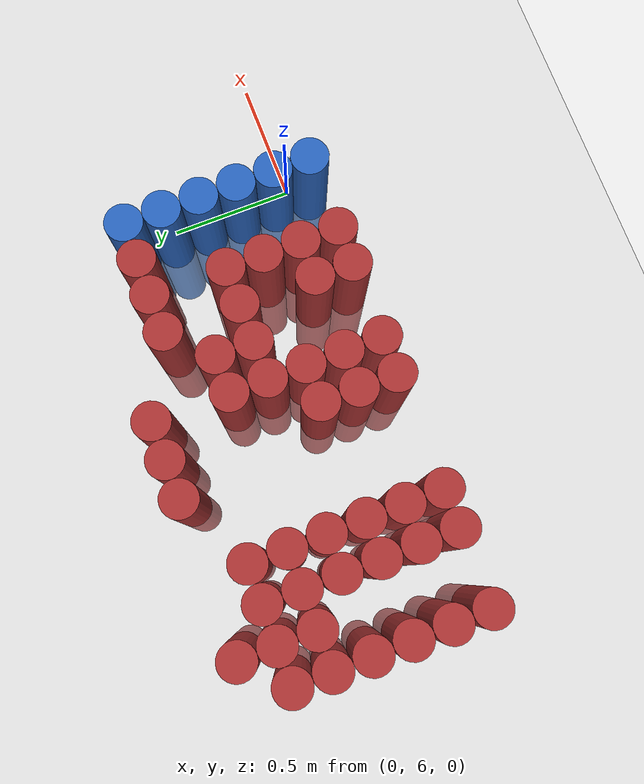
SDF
<sdf version="1.6">
 <world name="default">
  <model name="ground_plane">
   <static>1</static>
   <link name="link">
    <collision name="collision">
     <geometry><plane><normal>0 0 1</normal><size>100 100</size></plane></geometry>
     <surface><friction><ode><mu>100</mu><mu2>50</mu2></ode></friction></surface>
    </collision>
    <visual name="visual">
     <cast_shadows>0</cast_shadows>
     <geometry><plane><normal>0 0 1</normal><size>100 100</size></plane></geometry>
     <material>
      <script><uri>file://media/materials/scripts/gazebo.material</uri><name>Gazebo/Grey</name></script>
     </material>
    </visual>
   </link>
  </model>
  <model name="unit_cylinder_215">
   <static>1</static>
   <pose>-1.875000 5.925000 0.000000 0.000000 0.000000 0.000000</pose>
   <link name="link">
    <inertial>
     <mass>1</mass>
     <inertia><ixx>0.145833</ixx><ixy>0</ixy><ixz>0</ixz><iyy>0.145833</iyy><iyz>0</iyz><izz>0.125</izz></inertia>
    </inertial>
    <collision name="collision">
     <geometry><cylinder><radius>0.075000</radius><length>1</length></cylinder></geometry>
    </collision>
    <visual name="visual">
     <geometry><cylinder><radius>0.075000</radius><length>1</length></cylinder></geometry>
     <material>
      <ambient>0.648000 0.192000 0.192000 1</ambient>
      <diffuse>0.648000 0.192000 0.192000 1</diffuse>
     </material>
     <material>
      <script><name>Gazebo/Grey</name><uri>file://media/materials/scripts/gazebo.material</uri></script>
     </material>
    </visual>
   </link>
  </model>
  <model name="unit_cylinder_216">
   <static>1</static>
   <pose>-1.875000 6.075000 0.000000 0.000000 0.000000 0.000000</pose>
   <link name="link">
    <inertial>
     <mass>1</mass>
     <inertia><ixx>0.145833</ixx><ixy>0</ixy><ixz>0</ixz><iyy>0.145833</iyy><iyz>0</iyz><izz>0.125</izz></inertia>
    </inertial>
    <collision name="collision">
     <geometry><cylinder><radius>0.075000</radius><length>1</length></cylinder></geometry>
    </collision>
    <visual name="visual">
     <geometry><cylinder><radius>0.075000</radius><length>1</length></cylinder></geometry>
     <material>
      <ambient>0.648000 0.192000 0.192000 1</ambient>
      <diffuse>0.648000 0.192000 0.192000 1</diffuse>
     </material>
     <material>
      <script><name>Gazebo/Grey</name><uri>file://media/materials/scripts/gazebo.material</uri></script>
     </material>
    </visual>
   </link>
  </model>
  <model name="unit_cylinder_217">
   <static>1</static>
   <pose>-1.875000 6.225000 0.000000 0.000000 0.000000 0.000000</pose>
   <link name="link">
    <inertial>
     <mass>1</mass>
     <inertia><ixx>0.145833</ixx><ixy>0</ixy><ixz>0</ixz><iyy>0.145833</iyy><iyz>0</iyz><izz>0.125</izz></inertia>
    </inertial>
    <collision name="collision">
     <geometry><cylinder><radius>0.075000</radius><length>1</length></cylinder></geometry>
    </collision>
    <visual name="visual">
     <geometry><cylinder><radius>0.075000</radius><length>1</length></cylinder></geometry>
     <material>
      <ambient>0.648000 0.192000 0.192000 1</ambient>
      <diffuse>0.648000 0.192000 0.192000 1</diffuse>
     </material>
     <material>
      <script><name>Gazebo/Grey</name><uri>file://media/materials/scripts/gazebo.material</uri></script>
     </material>
    </visual>
   </link>
  </model>
  <model name="unit_cylinder_218">
   <static>1</static>
   <pose>-1.875000 6.375000 0.000000 0.000000 0.000000 0.000000</pose>
   <link name="link">
    <inertial>
     <mass>1</mass>
     <inertia><ixx>0.145833</ixx><ixy>0</ixy><ixz>0</ixz><iyy>0.145833</iyy><iyz>0</iyz><izz>0.125</izz></inertia>
    </inertial>
    <collision name="collision">
     <geometry><cylinder><radius>0.075000</radius><length>1</length></cylinder></geometry>
    </collision>
    <visual name="visual">
     <geometry><cylinder><radius>0.075000</radius><length>1</length></cylinder></geometry>
     <material>
      <ambient>0.648000 0.192000 0.192000 1</ambient>
      <diffuse>0.648000 0.192000 0.192000 1</diffuse>
     </material>
     <material>
      <script><name>Gazebo/Grey</name><uri>file://media/materials/scripts/gazebo.material</uri></script>
     </material>
    </visual>
   </link>
  </model>
  <model name="unit_cylinder_219">
   <static>1</static>
   <pose>-1.875000 6.525000 0.000000 0.000000 0.000000 0.000000</pose>
   <link name="link">
    <inertial>
     <mass>1</mass>
     <inertia><ixx>0.145833</ixx><ixy>0</ixy><ixz>0</ixz><iyy>0.145833</iyy><iyz>0</iyz><izz>0.125</izz></inertia>
    </inertial>
    <collision name="collision">
     <geometry><cylinder><radius>0.075000</radius><length>1</length></cylinder></geometry>
    </collision>
    <visual name="visual">
     <geometry><cylinder><radius>0.075000</radius><length>1</length></cylinder></geometry>
     <material>
      <ambient>0.648000 0.192000 0.192000 1</ambient>
      <diffuse>0.648000 0.192000 0.192000 1</diffuse>
     </material>
     <material>
      <script><name>Gazebo/Grey</name><uri>file://media/materials/scripts/gazebo.material</uri></script>
     </material>
    </visual>
   </link>
  </model>
  <model name="unit_cylinder_220">
   <static>1</static>
   <pose>-1.875000 6.675000 0.000000 0.000000 0.000000 0.000000</pose>
   <link name="link">
    <inertial>
     <mass>1</mass>
     <inertia><ixx>0.145833</ixx><ixy>0</ixy><ixz>0</ixz><iyy>0.145833</iyy><iyz>0</iyz><izz>0.125</izz></inertia>
    </inertial>
    <collision name="collision">
     <geometry><cylinder><radius>0.075000</radius><length>1</length></cylinder></geometry>
    </collision>
    <visual name="visual">
     <geometry><cylinder><radius>0.075000</radius><length>1</length></cylinder></geometry>
     <material>
      <ambient>0.648000 0.192000 0.192000 1</ambient>
      <diffuse>0.648000 0.192000 0.192000 1</diffuse>
     </material>
     <material>
      <script><name>Gazebo/Grey</name><uri>file://media/materials/scripts/gazebo.material</uri></script>
     </material>
    </visual>
   </link>
  </model>
  <model name="unit_cylinder_226">
   <static>1</static>
   <pose>-1.725000 6.525000 0.000000 0.000000 0.000000 0.000000</pose>
   <link name="link">
    <inertial>
     <mass>1</mass>
     <inertia><ixx>0.145833</ixx><ixy>0</ixy><ixz>0</ixz><iyy>0.145833</iyy><iyz>0</iyz><izz>0.125</izz></inertia>
    </inertial>
    <collision name="collision">
     <geometry><cylinder><radius>0.075000</radius><length>1</length></cylinder></geometry>
    </collision>
    <visual name="visual">
     <geometry><cylinder><radius>0.075000</radius><length>1</length></cylinder></geometry>
     <material>
      <ambient>0.648000 0.192000 0.192000 1</ambient>
      <diffuse>0.648000 0.192000 0.192000 1</diffuse>
     </material>
     <material>
      <script><name>Gazebo/Grey</name><uri>file://media/materials/scripts/gazebo.material</uri></script>
     </material>
    </visual>
   </link>
  </model>
  <model name="unit_cylinder_227">
   <static>1</static>
   <pose>-1.725000 6.675000 0.000000 0.000000 0.000000 0.000000</pose>
   <link name="link">
    <inertial>
     <mass>1</mass>
     <inertia><ixx>0.145833</ixx><ixy>0</ixy><ixz>0</ixz><iyy>0.145833</iyy><iyz>0</iyz><izz>0.125</izz></inertia>
    </inertial>
    <collision name="collision">
     <geometry><cylinder><radius>0.075000</radius><length>1</length></cylinder></geometry>
    </collision>
    <visual name="visual">
     <geometry><cylinder><radius>0.075000</radius><length>1</length></cylinder></geometry>
     <material>
      <ambient>0.648000 0.192000 0.192000 1</ambient>
      <diffuse>0.648000 0.192000 0.192000 1</diffuse>
     </material>
     <material>
      <script><name>Gazebo/Grey</name><uri>file://media/materials/scripts/gazebo.material</uri></script>
     </material>
    </visual>
   </link>
  </model>
  <model name="unit_cylinder_228">
   <static>1</static>
   <pose>-1.725000 6.825000 0.000000 0.000000 0.000000 0.000000</pose>
   <link name="link">
    <inertial>
     <mass>1</mass>
     <inertia><ixx>0.145833</ixx><ixy>0</ixy><ixz>0</ixz><iyy>0.145833</iyy><iyz>0</iyz><izz>0.125</izz></inertia>
    </inertial>
    <collision name="collision">
     <geometry><cylinder><radius>0.075000</radius><length>1</length></cylinder></geometry>
    </collision>
    <visual name="visual">
     <geometry><cylinder><radius>0.075000</radius><length>1</length></cylinder></geometry>
     <material>
      <ambient>0.648000 0.192000 0.192000 1</ambient>
      <diffuse>0.648000 0.192000 0.192000 1</diffuse>
     </material>
     <material>
      <script><name>Gazebo/Grey</name><uri>file://media/materials/scripts/gazebo.material</uri></script>
     </material>
    </visual>
   </link>
  </model>
  <model name="unit_cylinder_238">
   <static>1</static>
   <pose>-1.575000 5.925000 0.000000 0.000000 0.000000 0.000000</pose>
   <link name="link">
    <inertial>
     <mass>1</mass>
     <inertia><ixx>0.145833</ixx><ixy>0</ixy><ixz>0</ixz><iyy>0.145833</iyy><iyz>0</iyz><izz>0.125</izz></inertia>
    </inertial>
    <collision name="collision">
     <geometry><cylinder><radius>0.075000</radius><length>1</length></cylinder></geometry>
    </collision>
    <visual name="visual">
     <geometry><cylinder><radius>0.075000</radius><length>1</length></cylinder></geometry>
     <material>
      <ambient>0.648000 0.192000 0.192000 1</ambient>
      <diffuse>0.648000 0.192000 0.192000 1</diffuse>
     </material>
     <material>
      <script><name>Gazebo/Grey</name><uri>file://media/materials/scripts/gazebo.material</uri></script>
     </material>
    </visual>
   </link>
  </model>
  <model name="unit_cylinder_239">
   <static>1</static>
   <pose>-1.575000 6.075000 0.000000 0.000000 0.000000 0.000000</pose>
   <link name="link">
    <inertial>
     <mass>1</mass>
     <inertia><ixx>0.145833</ixx><ixy>0</ixy><ixz>0</ixz><iyy>0.145833</iyy><iyz>0</iyz><izz>0.125</izz></inertia>
    </inertial>
    <collision name="collision">
     <geometry><cylinder><radius>0.075000</radius><length>1</length></cylinder></geometry>
    </collision>
    <visual name="visual">
     <geometry><cylinder><radius>0.075000</radius><length>1</length></cylinder></geometry>
     <material>
      <ambient>0.648000 0.192000 0.192000 1</ambient>
      <diffuse>0.648000 0.192000 0.192000 1</diffuse>
     </material>
     <material>
      <script><name>Gazebo/Grey</name><uri>file://media/materials/scripts/gazebo.material</uri></script>
     </material>
    </visual>
   </link>
  </model>
  <model name="unit_cylinder_240">
   <static>1</static>
   <pose>-1.575000 6.225000 0.000000 0.000000 0.000000 0.000000</pose>
   <link name="link">
    <inertial>
     <mass>1</mass>
     <inertia><ixx>0.145833</ixx><ixy>0</ixy><ixz>0</ixz><iyy>0.145833</iyy><iyz>0</iyz><izz>0.125</izz></inertia>
    </inertial>
    <collision name="collision">
     <geometry><cylinder><radius>0.075000</radius><length>1</length></cylinder></geometry>
    </collision>
    <visual name="visual">
     <geometry><cylinder><radius>0.075000</radius><length>1</length></cylinder></geometry>
     <material>
      <ambient>0.648000 0.192000 0.192000 1</ambient>
      <diffuse>0.648000 0.192000 0.192000 1</diffuse>
     </material>
     <material>
      <script><name>Gazebo/Grey</name><uri>file://media/materials/scripts/gazebo.material</uri></script>
     </material>
    </visual>
   </link>
  </model>
  <model name="unit_cylinder_241">
   <static>1</static>
   <pose>-1.575000 6.375000 0.000000 0.000000 0.000000 0.000000</pose>
   <link name="link">
    <inertial>
     <mass>1</mass>
     <inertia><ixx>0.145833</ixx><ixy>0</ixy><ixz>0</ixz><iyy>0.145833</iyy><iyz>0</iyz><izz>0.125</izz></inertia>
    </inertial>
    <collision name="collision">
     <geometry><cylinder><radius>0.075000</radius><length>1</length></cylinder></geometry>
    </collision>
    <visual name="visual">
     <geometry><cylinder><radius>0.075000</radius><length>1</length></cylinder></geometry>
     <material>
      <ambient>0.648000 0.192000 0.192000 1</ambient>
      <diffuse>0.648000 0.192000 0.192000 1</diffuse>
     </material>
     <material>
      <script><name>Gazebo/Grey</name><uri>file://media/materials/scripts/gazebo.material</uri></script>
     </material>
    </visual>
   </link>
  </model>
  <model name="unit_cylinder_242">
   <static>1</static>
   <pose>-1.575000 6.525000 0.000000 0.000000 0.000000 0.000000</pose>
   <link name="link">
    <inertial>
     <mass>1</mass>
     <inertia><ixx>0.145833</ixx><ixy>0</ixy><ixz>0</ixz><iyy>0.145833</iyy><iyz>0</iyz><izz>0.125</izz></inertia>
    </inertial>
    <collision name="collision">
     <geometry><cylinder><radius>0.075000</radius><length>1</length></cylinder></geometry>
    </collision>
    <visual name="visual">
     <geometry><cylinder><radius>0.075000</radius><length>1</length></cylinder></geometry>
     <material>
      <ambient>0.648000 0.192000 0.192000 1</ambient>
      <diffuse>0.648000 0.192000 0.192000 1</diffuse>
     </material>
     <material>
      <script><name>Gazebo/Grey</name><uri>file://media/materials/scripts/gazebo.material</uri></script>
     </material>
    </visual>
   </link>
  </model>
  <model name="unit_cylinder_243">
   <static>1</static>
   <pose>-1.575000 6.675000 0.000000 0.000000 0.000000 0.000000</pose>
   <link name="link">
    <inertial>
     <mass>1</mass>
     <inertia><ixx>0.145833</ixx><ixy>0</ixy><ixz>0</ixz><iyy>0.145833</iyy><iyz>0</iyz><izz>0.125</izz></inertia>
    </inertial>
    <collision name="collision">
     <geometry><cylinder><radius>0.075000</radius><length>1</length></cylinder></geometry>
    </collision>
    <visual name="visual">
     <geometry><cylinder><radius>0.075000</radius><length>1</length></cylinder></geometry>
     <material>
      <ambient>0.648000 0.192000 0.192000 1</ambient>
      <diffuse>0.648000 0.192000 0.192000 1</diffuse>
     </material>
     <material>
      <script><name>Gazebo/Grey</name><uri>file://media/materials/scripts/gazebo.material</uri></script>
     </material>
    </visual>
   </link>
  </model>
  <model name="unit_cylinder_252">
   <static>1</static>
   <pose>-1.425000 5.925000 0.000000 0.000000 0.000000 0.000000</pose>
   <link name="link">
    <inertial>
     <mass>1</mass>
     <inertia><ixx>0.145833</ixx><ixy>0</ixy><ixz>0</ixz><iyy>0.145833</iyy><iyz>0</iyz><izz>0.125</izz></inertia>
    </inertial>
    <collision name="collision">
     <geometry><cylinder><radius>0.075000</radius><length>1</length></cylinder></geometry>
    </collision>
    <visual name="visual">
     <geometry><cylinder><radius>0.075000</radius><length>1</length></cylinder></geometry>
     <material>
      <ambient>0.648000 0.192000 0.192000 1</ambient>
      <diffuse>0.648000 0.192000 0.192000 1</diffuse>
     </material>
     <material>
      <script><name>Gazebo/Grey</name><uri>file://media/materials/scripts/gazebo.material</uri></script>
     </material>
    </visual>
   </link>
  </model>
  <model name="unit_cylinder_253">
   <static>1</static>
   <pose>-1.425000 6.075000 0.000000 0.000000 0.000000 0.000000</pose>
   <link name="link">
    <inertial>
     <mass>1</mass>
     <inertia><ixx>0.145833</ixx><ixy>0</ixy><ixz>0</ixz><iyy>0.145833</iyy><iyz>0</iyz><izz>0.125</izz></inertia>
    </inertial>
    <collision name="collision">
     <geometry><cylinder><radius>0.075000</radius><length>1</length></cylinder></geometry>
    </collision>
    <visual name="visual">
     <geometry><cylinder><radius>0.075000</radius><length>1</length></cylinder></geometry>
     <material>
      <ambient>0.648000 0.192000 0.192000 1</ambient>
      <diffuse>0.648000 0.192000 0.192000 1</diffuse>
     </material>
     <material>
      <script><name>Gazebo/Grey</name><uri>file://media/materials/scripts/gazebo.material</uri></script>
     </material>
    </visual>
   </link>
  </model>
  <model name="unit_cylinder_254">
   <static>1</static>
   <pose>-1.425000 6.225000 0.000000 0.000000 0.000000 0.000000</pose>
   <link name="link">
    <inertial>
     <mass>1</mass>
     <inertia><ixx>0.145833</ixx><ixy>0</ixy><ixz>0</ixz><iyy>0.145833</iyy><iyz>0</iyz><izz>0.125</izz></inertia>
    </inertial>
    <collision name="collision">
     <geometry><cylinder><radius>0.075000</radius><length>1</length></cylinder></geometry>
    </collision>
    <visual name="visual">
     <geometry><cylinder><radius>0.075000</radius><length>1</length></cylinder></geometry>
     <material>
      <ambient>0.648000 0.192000 0.192000 1</ambient>
      <diffuse>0.648000 0.192000 0.192000 1</diffuse>
     </material>
     <material>
      <script><name>Gazebo/Grey</name><uri>file://media/materials/scripts/gazebo.material</uri></script>
     </material>
    </visual>
   </link>
  </model>
  <model name="unit_cylinder_255">
   <static>1</static>
   <pose>-1.425000 6.375000 0.000000 0.000000 0.000000 0.000000</pose>
   <link name="link">
    <inertial>
     <mass>1</mass>
     <inertia><ixx>0.145833</ixx><ixy>0</ixy><ixz>0</ixz><iyy>0.145833</iyy><iyz>0</iyz><izz>0.125</izz></inertia>
    </inertial>
    <collision name="collision">
     <geometry><cylinder><radius>0.075000</radius><length>1</length></cylinder></geometry>
    </collision>
    <visual name="visual">
     <geometry><cylinder><radius>0.075000</radius><length>1</length></cylinder></geometry>
     <material>
      <ambient>0.648000 0.192000 0.192000 1</ambient>
      <diffuse>0.648000 0.192000 0.192000 1</diffuse>
     </material>
     <material>
      <script><name>Gazebo/Grey</name><uri>file://media/materials/scripts/gazebo.material</uri></script>
     </material>
    </visual>
   </link>
  </model>
  <model name="unit_cylinder_256">
   <static>1</static>
   <pose>-1.425000 6.525000 0.000000 0.000000 0.000000 0.000000</pose>
   <link name="link">
    <inertial>
     <mass>1</mass>
     <inertia><ixx>0.145833</ixx><ixy>0</ixy><ixz>0</ixz><iyy>0.145833</iyy><iyz>0</iyz><izz>0.125</izz></inertia>
    </inertial>
    <collision name="collision">
     <geometry><cylinder><radius>0.075000</radius><length>1</length></cylinder></geometry>
    </collision>
    <visual name="visual">
     <geometry><cylinder><radius>0.075000</radius><length>1</length></cylinder></geometry>
     <material>
      <ambient>0.648000 0.192000 0.192000 1</ambient>
      <diffuse>0.648000 0.192000 0.192000 1</diffuse>
     </material>
     <material>
      <script><name>Gazebo/Grey</name><uri>file://media/materials/scripts/gazebo.material</uri></script>
     </material>
    </visual>
   </link>
  </model>
  <model name="unit_cylinder_257">
   <static>1</static>
   <pose>-1.425000 6.675000 0.000000 0.000000 0.000000 0.000000</pose>
   <link name="link">
    <inertial>
     <mass>1</mass>
     <inertia><ixx>0.145833</ixx><ixy>0</ixy><ixz>0</ixz><iyy>0.145833</iyy><iyz>0</iyz><izz>0.125</izz></inertia>
    </inertial>
    <collision name="collision">
     <geometry><cylinder><radius>0.075000</radius><length>1</length></cylinder></geometry>
    </collision>
    <visual name="visual">
     <geometry><cylinder><radius>0.075000</radius><length>1</length></cylinder></geometry>
     <material>
      <ambient>0.648000 0.192000 0.192000 1</ambient>
      <diffuse>0.648000 0.192000 0.192000 1</diffuse>
     </material>
     <material>
      <script><name>Gazebo/Grey</name><uri>file://media/materials/scripts/gazebo.material</uri></script>
     </material>
    </visual>
   </link>
  </model>
  <model name="unit_cylinder_269">
   <static>1</static>
   <pose>-1.125000 6.825000 0.000000 0.000000 0.000000 0.000000</pose>
   <link name="link">
    <inertial>
     <mass>1</mass>
     <inertia><ixx>0.145833</ixx><ixy>0</ixy><ixz>0</ixz><iyy>0.145833</iyy><iyz>0</iyz><izz>0.125</izz></inertia>
    </inertial>
    <collision name="collision">
     <geometry><cylinder><radius>0.075000</radius><length>1</length></cylinder></geometry>
    </collision>
    <visual name="visual">
     <geometry><cylinder><radius>0.075000</radius><length>1</length></cylinder></geometry>
     <material>
      <ambient>0.648000 0.192000 0.192000 1</ambient>
      <diffuse>0.648000 0.192000 0.192000 1</diffuse>
     </material>
     <material>
      <script><name>Gazebo/Grey</name><uri>file://media/materials/scripts/gazebo.material</uri></script>
     </material>
    </visual>
   </link>
  </model>
  <model name="unit_cylinder_276">
   <static>1</static>
   <pose>-0.975000 5.925000 0.000000 0.000000 0.000000 0.000000</pose>
   <link name="link">
    <inertial>
     <mass>1</mass>
     <inertia><ixx>0.145833</ixx><ixy>0</ixy><ixz>0</ixz><iyy>0.145833</iyy><iyz>0</iyz><izz>0.125</izz></inertia>
    </inertial>
    <collision name="collision">
     <geometry><cylinder><radius>0.075000</radius><length>1</length></cylinder></geometry>
    </collision>
    <visual name="visual">
     <geometry><cylinder><radius>0.075000</radius><length>1</length></cylinder></geometry>
     <material>
      <ambient>0.648000 0.192000 0.192000 1</ambient>
      <diffuse>0.648000 0.192000 0.192000 1</diffuse>
     </material>
     <material>
      <script><name>Gazebo/Grey</name><uri>file://media/materials/scripts/gazebo.material</uri></script>
     </material>
    </visual>
   </link>
  </model>
  <model name="unit_cylinder_277">
   <static>1</static>
   <pose>-0.975000 6.075000 0.000000 0.000000 0.000000 0.000000</pose>
   <link name="link">
    <inertial>
     <mass>1</mass>
     <inertia><ixx>0.145833</ixx><ixy>0</ixy><ixz>0</ixz><iyy>0.145833</iyy><iyz>0</iyz><izz>0.125</izz></inertia>
    </inertial>
    <collision name="collision">
     <geometry><cylinder><radius>0.075000</radius><length>1</length></cylinder></geometry>
    </collision>
    <visual name="visual">
     <geometry><cylinder><radius>0.075000</radius><length>1</length></cylinder></geometry>
     <material>
      <ambient>0.648000 0.192000 0.192000 1</ambient>
      <diffuse>0.648000 0.192000 0.192000 1</diffuse>
     </material>
     <material>
      <script><name>Gazebo/Grey</name><uri>file://media/materials/scripts/gazebo.material</uri></script>
     </material>
    </visual>
   </link>
  </model>
  <model name="unit_cylinder_278">
   <static>1</static>
   <pose>-0.975000 6.225000 0.000000 0.000000 0.000000 0.000000</pose>
   <link name="link">
    <inertial>
     <mass>1</mass>
     <inertia><ixx>0.145833</ixx><ixy>0</ixy><ixz>0</ixz><iyy>0.145833</iyy><iyz>0</iyz><izz>0.125</izz></inertia>
    </inertial>
    <collision name="collision">
     <geometry><cylinder><radius>0.075000</radius><length>1</length></cylinder></geometry>
    </collision>
    <visual name="visual">
     <geometry><cylinder><radius>0.075000</radius><length>1</length></cylinder></geometry>
     <material>
      <ambient>0.648000 0.192000 0.192000 1</ambient>
      <diffuse>0.648000 0.192000 0.192000 1</diffuse>
     </material>
     <material>
      <script><name>Gazebo/Grey</name><uri>file://media/materials/scripts/gazebo.material</uri></script>
     </material>
    </visual>
   </link>
  </model>
  <model name="unit_cylinder_279">
   <static>1</static>
   <pose>-0.975000 6.825000 0.000000 0.000000 0.000000 0.000000</pose>
   <link name="link">
    <inertial>
     <mass>1</mass>
     <inertia><ixx>0.145833</ixx><ixy>0</ixy><ixz>0</ixz><iyy>0.145833</iyy><iyz>0</iyz><izz>0.125</izz></inertia>
    </inertial>
    <collision name="collision">
     <geometry><cylinder><radius>0.075000</radius><length>1</length></cylinder></geometry>
    </collision>
    <visual name="visual">
     <geometry><cylinder><radius>0.075000</radius><length>1</length></cylinder></geometry>
     <material>
      <ambient>0.648000 0.192000 0.192000 1</ambient>
      <diffuse>0.648000 0.192000 0.192000 1</diffuse>
     </material>
     <material>
      <script><name>Gazebo/Grey</name><uri>file://media/materials/scripts/gazebo.material</uri></script>
     </material>
    </visual>
   </link>
  </model>
  <model name="unit_cylinder_282">
   <static>1</static>
   <pose>-0.825000 5.925000 0.000000 0.000000 0.000000 0.000000</pose>
   <link name="link">
    <inertial>
     <mass>1</mass>
     <inertia><ixx>0.145833</ixx><ixy>0</ixy><ixz>0</ixz><iyy>0.145833</iyy><iyz>0</iyz><izz>0.125</izz></inertia>
    </inertial>
    <collision name="collision">
     <geometry><cylinder><radius>0.075000</radius><length>1</length></cylinder></geometry>
    </collision>
    <visual name="visual">
     <geometry><cylinder><radius>0.075000</radius><length>1</length></cylinder></geometry>
     <material>
      <ambient>0.648000 0.192000 0.192000 1</ambient>
      <diffuse>0.648000 0.192000 0.192000 1</diffuse>
     </material>
     <material>
      <script><name>Gazebo/Grey</name><uri>file://media/materials/scripts/gazebo.material</uri></script>
     </material>
    </visual>
   </link>
  </model>
  <model name="unit_cylinder_283">
   <static>1</static>
   <pose>-0.825000 6.075000 0.000000 0.000000 0.000000 0.000000</pose>
   <link name="link">
    <inertial>
     <mass>1</mass>
     <inertia><ixx>0.145833</ixx><ixy>0</ixy><ixz>0</ixz><iyy>0.145833</iyy><iyz>0</iyz><izz>0.125</izz></inertia>
    </inertial>
    <collision name="collision">
     <geometry><cylinder><radius>0.075000</radius><length>1</length></cylinder></geometry>
    </collision>
    <visual name="visual">
     <geometry><cylinder><radius>0.075000</radius><length>1</length></cylinder></geometry>
     <material>
      <ambient>0.648000 0.192000 0.192000 1</ambient>
      <diffuse>0.648000 0.192000 0.192000 1</diffuse>
     </material>
     <material>
      <script><name>Gazebo/Grey</name><uri>file://media/materials/scripts/gazebo.material</uri></script>
     </material>
    </visual>
   </link>
  </model>
  <model name="unit_cylinder_284">
   <static>1</static>
   <pose>-0.825000 6.225000 0.000000 0.000000 0.000000 0.000000</pose>
   <link name="link">
    <inertial>
     <mass>1</mass>
     <inertia><ixx>0.145833</ixx><ixy>0</ixy><ixz>0</ixz><iyy>0.145833</iyy><iyz>0</iyz><izz>0.125</izz></inertia>
    </inertial>
    <collision name="collision">
     <geometry><cylinder><radius>0.075000</radius><length>1</length></cylinder></geometry>
    </collision>
    <visual name="visual">
     <geometry><cylinder><radius>0.075000</radius><length>1</length></cylinder></geometry>
     <material>
      <ambient>0.648000 0.192000 0.192000 1</ambient>
      <diffuse>0.648000 0.192000 0.192000 1</diffuse>
     </material>
     <material>
      <script><name>Gazebo/Grey</name><uri>file://media/materials/scripts/gazebo.material</uri></script>
     </material>
    </visual>
   </link>
  </model>
  <model name="unit_cylinder_285">
   <static>1</static>
   <pose>-0.825000 6.375000 0.000000 0.000000 0.000000 0.000000</pose>
   <link name="link">
    <inertial>
     <mass>1</mass>
     <inertia><ixx>0.145833</ixx><ixy>0</ixy><ixz>0</ixz><iyy>0.145833</iyy><iyz>0</iyz><izz>0.125</izz></inertia>
    </inertial>
    <collision name="collision">
     <geometry><cylinder><radius>0.075000</radius><length>1</length></cylinder></geometry>
    </collision>
    <visual name="visual">
     <geometry><cylinder><radius>0.075000</radius><length>1</length></cylinder></geometry>
     <material>
      <ambient>0.648000 0.192000 0.192000 1</ambient>
      <diffuse>0.648000 0.192000 0.192000 1</diffuse>
     </material>
     <material>
      <script><name>Gazebo/Grey</name><uri>file://media/materials/scripts/gazebo.material</uri></script>
     </material>
    </visual>
   </link>
  </model>
  <model name="unit_cylinder_286">
   <static>1</static>
   <pose>-0.825000 6.525000 0.000000 0.000000 0.000000 0.000000</pose>
   <link name="link">
    <inertial>
     <mass>1</mass>
     <inertia><ixx>0.145833</ixx><ixy>0</ixy><ixz>0</ixz><iyy>0.145833</iyy><iyz>0</iyz><izz>0.125</izz></inertia>
    </inertial>
    <collision name="collision">
     <geometry><cylinder><radius>0.075000</radius><length>1</length></cylinder></geometry>
    </collision>
    <visual name="visual">
     <geometry><cylinder><radius>0.075000</radius><length>1</length></cylinder></geometry>
     <material>
      <ambient>0.648000 0.192000 0.192000 1</ambient>
      <diffuse>0.648000 0.192000 0.192000 1</diffuse>
     </material>
     <material>
      <script><name>Gazebo/Grey</name><uri>file://media/materials/scripts/gazebo.material</uri></script>
     </material>
    </visual>
   </link>
  </model>
  <model name="unit_cylinder_287">
   <static>1</static>
   <pose>-0.825000 6.825000 0.000000 0.000000 0.000000 0.000000</pose>
   <link name="link">
    <inertial>
     <mass>1</mass>
     <inertia><ixx>0.145833</ixx><ixy>0</ixy><ixz>0</ixz><iyy>0.145833</iyy><iyz>0</iyz><izz>0.125</izz></inertia>
    </inertial>
    <collision name="collision">
     <geometry><cylinder><radius>0.075000</radius><length>1</length></cylinder></geometry>
    </collision>
    <visual name="visual">
     <geometry><cylinder><radius>0.075000</radius><length>1</length></cylinder></geometry>
     <material>
      <ambient>0.648000 0.192000 0.192000 1</ambient>
      <diffuse>0.648000 0.192000 0.192000 1</diffuse>
     </material>
     <material>
      <script><name>Gazebo/Grey</name><uri>file://media/materials/scripts/gazebo.material</uri></script>
     </material>
    </visual>
   </link>
  </model>
  <model name="unit_cylinder_292">
   <static>1</static>
   <pose>-0.675000 6.375000 0.000000 0.000000 0.000000 0.000000</pose>
   <link name="link">
    <inertial>
     <mass>1</mass>
     <inertia><ixx>0.145833</ixx><ixy>0</ixy><ixz>0</ixz><iyy>0.145833</iyy><iyz>0</iyz><izz>0.125</izz></inertia>
    </inertial>
    <collision name="collision">
     <geometry><cylinder><radius>0.075000</radius><length>1</length></cylinder></geometry>
    </collision>
    <visual name="visual">
     <geometry><cylinder><radius>0.075000</radius><length>1</length></cylinder></geometry>
     <material>
      <ambient>0.648000 0.192000 0.192000 1</ambient>
      <diffuse>0.648000 0.192000 0.192000 1</diffuse>
     </material>
     <material>
      <script><name>Gazebo/Grey</name><uri>file://media/materials/scripts/gazebo.material</uri></script>
     </material>
    </visual>
   </link>
  </model>
  <model name="unit_cylinder_293">
   <static>1</static>
   <pose>-0.675000 6.525000 0.000000 0.000000 0.000000 0.000000</pose>
   <link name="link">
    <inertial>
     <mass>1</mass>
     <inertia><ixx>0.145833</ixx><ixy>0</ixy><ixz>0</ixz><iyy>0.145833</iyy><iyz>0</iyz><izz>0.125</izz></inertia>
    </inertial>
    <collision name="collision">
     <geometry><cylinder><radius>0.075000</radius><length>1</length></cylinder></geometry>
    </collision>
    <visual name="visual">
     <geometry><cylinder><radius>0.075000</radius><length>1</length></cylinder></geometry>
     <material>
      <ambient>0.648000 0.192000 0.192000 1</ambient>
      <diffuse>0.648000 0.192000 0.192000 1</diffuse>
     </material>
     <material>
      <script><name>Gazebo/Grey</name><uri>file://media/materials/scripts/gazebo.material</uri></script>
     </material>
    </visual>
   </link>
  </model>
  <model name="unit_cylinder_301">
   <static>1</static>
   <pose>-0.525000 5.925000 0.000000 0.000000 0.000000 0.000000</pose>
   <link name="link">
    <inertial>
     <mass>1</mass>
     <inertia><ixx>0.145833</ixx><ixy>0</ixy><ixz>0</ixz><iyy>0.145833</iyy><iyz>0</iyz><izz>0.125</izz></inertia>
    </inertial>
    <collision name="collision">
     <geometry><cylinder><radius>0.075000</radius><length>1</length></cylinder></geometry>
    </collision>
    <visual name="visual">
     <geometry><cylinder><radius>0.075000</radius><length>1</length></cylinder></geometry>
     <material>
      <ambient>0.648000 0.192000 0.192000 1</ambient>
      <diffuse>0.648000 0.192000 0.192000 1</diffuse>
     </material>
     <material>
      <script><name>Gazebo/Grey</name><uri>file://media/materials/scripts/gazebo.material</uri></script>
     </material>
    </visual>
   </link>
  </model>
  <model name="unit_cylinder_302">
   <static>1</static>
   <pose>-0.525000 6.075000 0.000000 0.000000 0.000000 0.000000</pose>
   <link name="link">
    <inertial>
     <mass>1</mass>
     <inertia><ixx>0.145833</ixx><ixy>0</ixy><ixz>0</ixz><iyy>0.145833</iyy><iyz>0</iyz><izz>0.125</izz></inertia>
    </inertial>
    <collision name="collision">
     <geometry><cylinder><radius>0.075000</radius><length>1</length></cylinder></geometry>
    </collision>
    <visual name="visual">
     <geometry><cylinder><radius>0.075000</radius><length>1</length></cylinder></geometry>
     <material>
      <ambient>0.648000 0.192000 0.192000 1</ambient>
      <diffuse>0.648000 0.192000 0.192000 1</diffuse>
     </material>
     <material>
      <script><name>Gazebo/Grey</name><uri>file://media/materials/scripts/gazebo.material</uri></script>
     </material>
    </visual>
   </link>
  </model>
  <model name="unit_cylinder_303">
   <static>1</static>
   <pose>-0.525000 6.375000 0.000000 0.000000 0.000000 0.000000</pose>
   <link name="link">
    <inertial>
     <mass>1</mass>
     <inertia><ixx>0.145833</ixx><ixy>0</ixy><ixz>0</ixz><iyy>0.145833</iyy><iyz>0</iyz><izz>0.125</izz></inertia>
    </inertial>
    <collision name="collision">
     <geometry><cylinder><radius>0.075000</radius><length>1</length></cylinder></geometry>
    </collision>
    <visual name="visual">
     <geometry><cylinder><radius>0.075000</radius><length>1</length></cylinder></geometry>
     <material>
      <ambient>0.648000 0.192000 0.192000 1</ambient>
      <diffuse>0.648000 0.192000 0.192000 1</diffuse>
     </material>
     <material>
      <script><name>Gazebo/Grey</name><uri>file://media/materials/scripts/gazebo.material</uri></script>
     </material>
    </visual>
   </link>
  </model>
  <model name="unit_cylinder_304">
   <static>1</static>
   <pose>-0.525000 6.675000 0.000000 0.000000 0.000000 0.000000</pose>
   <link name="link">
    <inertial>
     <mass>1</mass>
     <inertia><ixx>0.145833</ixx><ixy>0</ixy><ixz>0</ixz><iyy>0.145833</iyy><iyz>0</iyz><izz>0.125</izz></inertia>
    </inertial>
    <collision name="collision">
     <geometry><cylinder><radius>0.075000</radius><length>1</length></cylinder></geometry>
    </collision>
    <visual name="visual">
     <geometry><cylinder><radius>0.075000</radius><length>1</length></cylinder></geometry>
     <material>
      <ambient>0.648000 0.192000 0.192000 1</ambient>
      <diffuse>0.648000 0.192000 0.192000 1</diffuse>
     </material>
     <material>
      <script><name>Gazebo/Grey</name><uri>file://media/materials/scripts/gazebo.material</uri></script>
     </material>
    </visual>
   </link>
  </model>
  <model name="unit_cylinder_309">
   <static>1</static>
   <pose>-0.375000 5.925000 0.000000 0.000000 0.000000 0.000000</pose>
   <link name="link">
    <inertial>
     <mass>1</mass>
     <inertia><ixx>0.145833</ixx><ixy>0</ixy><ixz>0</ixz><iyy>0.145833</iyy><iyz>0</iyz><izz>0.125</izz></inertia>
    </inertial>
    <collision name="collision">
     <geometry><cylinder><radius>0.075000</radius><length>1</length></cylinder></geometry>
    </collision>
    <visual name="visual">
     <geometry><cylinder><radius>0.075000</radius><length>1</length></cylinder></geometry>
     <material>
      <ambient>0.648000 0.192000 0.192000 1</ambient>
      <diffuse>0.648000 0.192000 0.192000 1</diffuse>
     </material>
     <material>
      <script><name>Gazebo/Grey</name><uri>file://media/materials/scripts/gazebo.material</uri></script>
     </material>
    </visual>
   </link>
  </model>
  <model name="unit_cylinder_310">
   <static>1</static>
   <pose>-0.375000 6.075000 0.000000 0.000000 0.000000 0.000000</pose>
   <link name="link">
    <inertial>
     <mass>1</mass>
     <inertia><ixx>0.145833</ixx><ixy>0</ixy><ixz>0</ixz><iyy>0.145833</iyy><iyz>0</iyz><izz>0.125</izz></inertia>
    </inertial>
    <collision name="collision">
     <geometry><cylinder><radius>0.075000</radius><length>1</length></cylinder></geometry>
    </collision>
    <visual name="visual">
     <geometry><cylinder><radius>0.075000</radius><length>1</length></cylinder></geometry>
     <material>
      <ambient>0.648000 0.192000 0.192000 1</ambient>
      <diffuse>0.648000 0.192000 0.192000 1</diffuse>
     </material>
     <material>
      <script><name>Gazebo/Grey</name><uri>file://media/materials/scripts/gazebo.material</uri></script>
     </material>
    </visual>
   </link>
  </model>
  <model name="unit_cylinder_311">
   <static>1</static>
   <pose>-0.375000 6.225000 0.000000 0.000000 0.000000 0.000000</pose>
   <link name="link">
    <inertial>
     <mass>1</mass>
     <inertia><ixx>0.145833</ixx><ixy>0</ixy><ixz>0</ixz><iyy>0.145833</iyy><iyz>0</iyz><izz>0.125</izz></inertia>
    </inertial>
    <collision name="collision">
     <geometry><cylinder><radius>0.075000</radius><length>1</length></cylinder></geometry>
    </collision>
    <visual name="visual">
     <geometry><cylinder><radius>0.075000</radius><length>1</length></cylinder></geometry>
     <material>
      <ambient>0.648000 0.192000 0.192000 1</ambient>
      <diffuse>0.648000 0.192000 0.192000 1</diffuse>
     </material>
     <material>
      <script><name>Gazebo/Grey</name><uri>file://media/materials/scripts/gazebo.material</uri></script>
     </material>
    </visual>
   </link>
  </model>
  <model name="unit_cylinder_312">
   <static>1</static>
   <pose>-0.375000 6.375000 0.000000 0.000000 0.000000 0.000000</pose>
   <link name="link">
    <inertial>
     <mass>1</mass>
     <inertia><ixx>0.145833</ixx><ixy>0</ixy><ixz>0</ixz><iyy>0.145833</iyy><iyz>0</iyz><izz>0.125</izz></inertia>
    </inertial>
    <collision name="collision">
     <geometry><cylinder><radius>0.075000</radius><length>1</length></cylinder></geometry>
    </collision>
    <visual name="visual">
     <geometry><cylinder><radius>0.075000</radius><length>1</length></cylinder></geometry>
     <material>
      <ambient>0.648000 0.192000 0.192000 1</ambient>
      <diffuse>0.648000 0.192000 0.192000 1</diffuse>
     </material>
     <material>
      <script><name>Gazebo/Grey</name><uri>file://media/materials/scripts/gazebo.material</uri></script>
     </material>
    </visual>
   </link>
  </model>
  <model name="unit_cylinder_313">
   <static>1</static>
   <pose>-0.375000 6.675000 0.000000 0.000000 0.000000 0.000000</pose>
   <link name="link">
    <inertial>
     <mass>1</mass>
     <inertia><ixx>0.145833</ixx><ixy>0</ixy><ixz>0</ixz><iyy>0.145833</iyy><iyz>0</iyz><izz>0.125</izz></inertia>
    </inertial>
    <collision name="collision">
     <geometry><cylinder><radius>0.075000</radius><length>1</length></cylinder></geometry>
    </collision>
    <visual name="visual">
     <geometry><cylinder><radius>0.075000</radius><length>1</length></cylinder></geometry>
     <material>
      <ambient>0.648000 0.192000 0.192000 1</ambient>
      <diffuse>0.648000 0.192000 0.192000 1</diffuse>
     </material>
     <material>
      <script><name>Gazebo/Grey</name><uri>file://media/materials/scripts/gazebo.material</uri></script>
     </material>
    </visual>
   </link>
  </model>
  <model name="unit_cylinder_316">
   <static>1</static>
   <pose>-0.225000 6.675000 0.000000 0.000000 0.000000 0.000000</pose>
   <link name="link">
    <inertial>
     <mass>1</mass>
     <inertia><ixx>0.145833</ixx><ixy>0</ixy><ixz>0</ixz><iyy>0.145833</iyy><iyz>0</iyz><izz>0.125</izz></inertia>
    </inertial>
    <collision name="collision">
     <geometry><cylinder><radius>0.075000</radius><length>1</length></cylinder></geometry>
    </collision>
    <visual name="visual">
     <geometry><cylinder><radius>0.075000</radius><length>1</length></cylinder></geometry>
     <material>
      <ambient>0.648000 0.192000 0.192000 1</ambient>
      <diffuse>0.648000 0.192000 0.192000 1</diffuse>
     </material>
     <material>
      <script><name>Gazebo/Grey</name><uri>file://media/materials/scripts/gazebo.material</uri></script>
     </material>
    </visual>
   </link>
  </model>
  <model name="unit_cylinder_323">
   <static>1</static>
   <pose>-0.075000 5.925000 0.000000 0.000000 0.000000 0.000000</pose>
   <link name="link">
    <inertial>
     <mass>1</mass>
     <inertia><ixx>0.145833</ixx><ixy>0</ixy><ixz>0</ixz><iyy>0.145833</iyy><iyz>0</iyz><izz>0.125</izz></inertia>
    </inertial>
    <collision name="collision">
     <geometry><cylinder><radius>0.075000</radius><length>1</length></cylinder></geometry>
    </collision>
    <visual name="visual">
     <geometry><cylinder><radius>0.075000</radius><length>1</length></cylinder></geometry>
     <material>
      <ambient>0.152000 0.379000 0.720000 1</ambient>
      <diffuse>0.152000 0.379000 0.720000 1</diffuse>
     </material>
     <material>
      <script><name>Gazebo/Grey</name><uri>file://media/materials/scripts/gazebo.material</uri></script>
     </material>
    </visual>
   </link>
  </model>
  <model name="unit_cylinder_324">
   <static>1</static>
   <pose>-0.075000 6.075000 0.000000 0.000000 0.000000 0.000000</pose>
   <link name="link">
    <inertial>
     <mass>1</mass>
     <inertia><ixx>0.145833</ixx><ixy>0</ixy><ixz>0</ixz><iyy>0.145833</iyy><iyz>0</iyz><izz>0.125</izz></inertia>
    </inertial>
    <collision name="collision">
     <geometry><cylinder><radius>0.075000</radius><length>1</length></cylinder></geometry>
    </collision>
    <visual name="visual">
     <geometry><cylinder><radius>0.075000</radius><length>1</length></cylinder></geometry>
     <material>
      <ambient>0.152000 0.379000 0.720000 1</ambient>
      <diffuse>0.152000 0.379000 0.720000 1</diffuse>
     </material>
     <material>
      <script><name>Gazebo/Grey</name><uri>file://media/materials/scripts/gazebo.material</uri></script>
     </material>
    </visual>
   </link>
  </model>
  <model name="unit_cylinder_325">
   <static>1</static>
   <pose>-0.075000 6.225000 0.000000 0.000000 0.000000 0.000000</pose>
   <link name="link">
    <inertial>
     <mass>1</mass>
     <inertia><ixx>0.145833</ixx><ixy>0</ixy><ixz>0</ixz><iyy>0.145833</iyy><iyz>0</iyz><izz>0.125</izz></inertia>
    </inertial>
    <collision name="collision">
     <geometry><cylinder><radius>0.075000</radius><length>1</length></cylinder></geometry>
    </collision>
    <visual name="visual">
     <geometry><cylinder><radius>0.075000</radius><length>1</length></cylinder></geometry>
     <material>
      <ambient>0.152000 0.379000 0.720000 1</ambient>
      <diffuse>0.152000 0.379000 0.720000 1</diffuse>
     </material>
     <material>
      <script><name>Gazebo/Grey</name><uri>file://media/materials/scripts/gazebo.material</uri></script>
     </material>
    </visual>
   </link>
  </model>
  <model name="unit_cylinder_326">
   <static>1</static>
   <pose>-0.075000 6.375000 0.000000 0.000000 0.000000 0.000000</pose>
   <link name="link">
    <inertial>
     <mass>1</mass>
     <inertia><ixx>0.145833</ixx><ixy>0</ixy><ixz>0</ixz><iyy>0.145833</iyy><iyz>0</iyz><izz>0.125</izz></inertia>
    </inertial>
    <collision name="collision">
     <geometry><cylinder><radius>0.075000</radius><length>1</length></cylinder></geometry>
    </collision>
    <visual name="visual">
     <geometry><cylinder><radius>0.075000</radius><length>1</length></cylinder></geometry>
     <material>
      <ambient>0.152000 0.379000 0.720000 1</ambient>
      <diffuse>0.152000 0.379000 0.720000 1</diffuse>
     </material>
     <material>
      <script><name>Gazebo/Grey</name><uri>file://media/materials/scripts/gazebo.material</uri></script>
     </material>
    </visual>
   </link>
  </model>
  <model name="unit_cylinder_327">
   <static>1</static>
   <pose>-0.075000 6.525000 0.000000 0.000000 0.000000 0.000000</pose>
   <link name="link">
    <inertial>
     <mass>1</mass>
     <inertia><ixx>0.145833</ixx><ixy>0</ixy><ixz>0</ixz><iyy>0.145833</iyy><iyz>0</iyz><izz>0.125</izz></inertia>
    </inertial>
    <collision name="collision">
     <geometry><cylinder><radius>0.075000</radius><length>1</length></cylinder></geometry>
    </collision>
    <visual name="visual">
     <geometry><cylinder><radius>0.075000</radius><length>1</length></cylinder></geometry>
     <material>
      <ambient>0.152000 0.379000 0.720000 1</ambient>
      <diffuse>0.152000 0.379000 0.720000 1</diffuse>
     </material>
     <material>
      <script><name>Gazebo/Grey</name><uri>file://media/materials/scripts/gazebo.material</uri></script>
     </material>
    </visual>
   </link>
  </model>
  <model name="unit_cylinder_328">
   <static>1</static>
   <pose>-0.075000 6.675000 0.000000 0.000000 0.000000 0.000000</pose>
   <link name="link">
    <inertial>
     <mass>1</mass>
     <inertia><ixx>0.145833</ixx><ixy>0</ixy><ixz>0</ixz><iyy>0.145833</iyy><iyz>0</iyz><izz>0.125</izz></inertia>
    </inertial>
    <collision name="collision">
     <geometry><cylinder><radius>0.075000</radius><length>1</length></cylinder></geometry>
    </collision>
    <visual name="visual">
     <geometry><cylinder><radius>0.075000</radius><length>1</length></cylinder></geometry>
     <material>
      <ambient>0.152000 0.379000 0.720000 1</ambient>
      <diffuse>0.152000 0.379000 0.720000 1</diffuse>
     </material>
     <material>
      <script><name>Gazebo/Grey</name><uri>file://media/materials/scripts/gazebo.material</uri></script>
     </material>
    </visual>
   </link>
  </model>
 </world>
</sdf>
